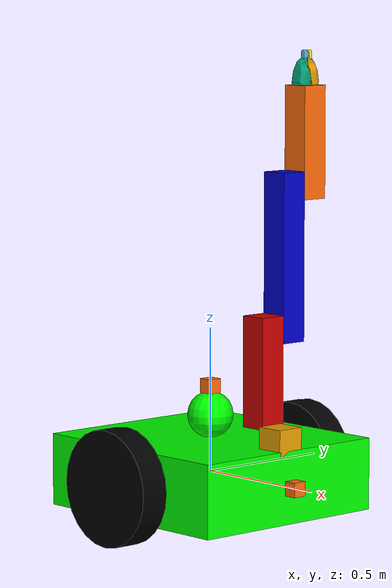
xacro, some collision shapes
<?xml version="1.0"?>
<robot name="mantzakidisbot" xmlns:xacro="http://www.ros.org/wiki/xacro">

 <!-- Σταθερές για τις διαστάσεις του ρομπότ -->
 <xacro:property name="height1" value="0.25" />        <!-- Ύψος ρομπότ-->
 <xacro:property name="length1" value="0.75" />        <!-- Μήκος ρομπότ-->
<xacro:property name="width1" value="0.8" />           <!--Πλάτος ρομπότ-->
<xacro:property name="mass1" value="10" />             <!--Μάζα ρομπότ-->
<xacro:property name="caster_radius" value="0.07" />   <!--Ακτίνα caster-->
<xacro:property name="caster_mass" value="0.5" />      <!-- Μάζα του caster -->
<xacro:property name="head_radius" value="0.08" />     <!-- Ακτίνα του κεφαλιού -->
<xacro:property name="head_mass" value="1" />          <!-- Μάζα του κεφαλιού -->
<xacro:property name="w_length" value="0.1"/>          <!-- Μήκος των τροχών -->
<xacro:property name="w_radius" value="0.2"/>          <!-- Ακτίνα των τροχών -->
<xacro:property name="w_mass" value="0.5" />           <!-- Μάζα των τροχών -->

 <!-- Εισαγωγή χρωμάτων Rviz -->
  <xacro:include filename="$(find robot_project)/urdf/materials.xacro" />

<!-- Default Inertial -->
  <xacro:macro name="default_inertial" params="z_value i_value mass">
    <inertial>
      <origin xyz="0 0 ${z_value}" rpy="0 0 0"/>
      <mass value="${mass}" />
      <inertia ixx="${i_value}" ixy="0.0" ixz="0.0"
               iyy="${i_value}" iyz="0.0"
               izz="${i_value}" />
      </inertial>
  </xacro:macro>

<!-- Εισαγωγή URDF του βραχίονα -->
  <xacro:include filename="$(find robot_project)/urdf/mantzakidisbot_arm.xacro" />

<!-- Εισαγωγή στοιχείων Gazebo, συμπεριλαμβανομένων των χρωμάτων του Gazebo -->
  <xacro:include filename="$(find robot_project)/urdf/mantzakidisbot.gazebo" />

<!-- Εισαγωγή laser & camera-->
  <xacro:include filename="$(find robot_project)/urdf/mantzakidisbot_laser_camera.xacro" />
<!-- Εισαγωγή κάμερας κεφαλιού-->
  <xacro:include filename="$(find robot_project)/urdf/head_camera.xacro" />

  <!-- Robot chassis -->
  <link name="chassis">
    <visual>
      <origin xyz="0 0 0" rpy="0 0 0" />
      <geometry>
          <box size="${width1} ${length1} ${height1}"/>
      </geometry>
      <material name="green">
      </material>
    </visual>
    <!-- Chassis collision, mass and inertia -->
    <collision>
      <origin xyz="0 0 0" rpy="0 0 0" />
      <geometry>
          <box size="${width1} ${length1} ${height1}"/>
      </geometry>
    </collision>
    <inertial>
      <mass value="${mass1}"/>
      <inertia ixx="0.52" ixy="0.0" ixz="0.0" iyy="0.58" iyz="0.0" izz="0.1"/>
    </inertial>
  </link>

<!-- Caster -->
  <link name="caster">
    <visual>
      <origin xyz="0 0 0" rpy="0 0 0" />
      <geometry>
        <sphere radius="${caster_radius}" />
      </geometry>
       <material name="green">
      </material>
    </visual>
     <!-- Caster collision, mass and inertia -->
    <collision>
      <origin xyz="0 0 0" rpy="0 0 0" />
      <geometry>
        <sphere radius="${caster_radius}" />
      </geometry>
      <surface>
        <friction>
          <ode>
            <mu>0</mu>
            <mu2>0</mu2>
            <slip1>1.0</slip1>
            <slip2>1.0</slip2>
          </ode>
        </friction>
      </surface>
    </collision>
    <inertial>
      <mass value="${caster_mass}"/>
      <inertia ixx="0.0001" ixy="0.0" ixz="0.0" iyy="0.0001" iyz="0.0" izz="0.0001"/>
    </inertial>
  </link>
  <!-- Caster joint -->
  <joint name="joint_caster" type="fixed">
    <parent link="chassis"/>
    <child link="caster"/>
     <origin xyz="-0.35 0 -0.125" rpy="0 0 0" />
  </joint>

<!--Head-->
    <link name="head">
      <visual>
        <origin xyz="0 0 0" rpy="0 0 0" />
        <geometry>
          <sphere radius="${head_radius}" />
        </geometry>
        <material name="green">
      </material>
      </visual>
      <!-- Head collision, mass and inertia -->
      <collision>
        <origin xyz="0 0 0" rpy="0 0 0" />
        <geometry>
          <sphere radius="${head_radius}" />
        </geometry>
      </collision>
      <inertial>
        <mass value="${head_mass}"/>
        <inertia ixx="0.004" ixy="0.0" ixz="0.0" iyy="0.004" iyz="0.0" izz="0.004"/>
      </inertial>
    </link>

  <!--Head joint-->
  <joint name="joint_head" type="fixed">
    <parent link="chassis"/>
    <child link="head"/>
    <origin xyz="0 0 0.2" rpy="0 0 0" />
  </joint>

<!-- Right Wheel -->
  <link name="right_wheel">
    <visual>
      <origin xyz="0 0 0" rpy="1.570795 0 0" />
      <geometry>
          <cylinder length="${w_length}" radius="${w_radius}" />
      </geometry>
     <material name="black">
      </material>
    </visual>
    <!-- Right Wheel collision, mass and inertia -->
    <collision>
      <origin xyz="0 0 0" rpy="1.570795 0 0" />
      <geometry>
          <cylinder length="${w_length}" radius="${w_radius}" />
      </geometry>
    </collision>
    <inertial>
      <mass value="${w_mass}"/>
      <inertia ixx="0.01" ixy="0.0" ixz="0.0" iyy="0.005" iyz="0.0" izz="0.005"/>
    </inertial>
  </link>
  <joint name="joint_right_wheel" type="continuous">
    <parent link="chassis"/>
    <child link="right_wheel"/>
    <origin xyz="0 -0.43 0" rpy="0 0 0" />
    <axis xyz="0 1 0" />
  </joint>

<!-- Left Wheel -->
  <link name="left_wheel">
    <visual>
      <origin xyz="0 0 0" rpy="1.570795 0 0" />
      <geometry>
          <cylinder length="${w_length}" radius="${w_radius}" />
      </geometry>
      <material name="black">
      </material>
    </visual>
    <!-- Left Wheel collision, mass and inertia -->
    <collision>
      <origin xyz="0 0 0" rpy="1.570795 0 0" />
      <geometry>
          <cylinder length="${w_length}" radius="${w_radius}" />
      </geometry>
    </collision>
    <inertial>
      <mass value="${w_mass}"/>
      <inertia ixx="0.01" ixy="0.0" ixz="0.0" iyy="0.005" iyz="0.0" izz="0.005"/>
    </inertial>
  </link>
  <joint name="joint_left_wheel" type="continuous">
    <parent link="chassis"/>
    <child link="left_wheel"/>
    <origin xyz="0 0.43 0" rpy="0 0 0" />
    <axis xyz="0 1 0" />
  </joint>
</robot>

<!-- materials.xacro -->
<robot>
  <material name="black">
    <color rgba="0 0 0 1"/>
  </material>

  <material name="green">
    <color rgba="0 1 0 1"/>
  </material>

  <material name="red">
    <color rgba="0.8 0.0 0.0 1.0"/>
  </material>

  <material name="blue">
    <color rgba="0.0 0.0 0.8 1.0"/>
  </material>

  <material name="orange">
    <color rgba="${255/255} ${108/255} ${10/255} 1.0"/>
  </material>

  <material name="yellow">
    <color rgba="1.0 1.0 0.0 1.0"/>
  </material>

  <material name="purple">
    <color rgba="0.5 0.0 0.5 1.0"/>
  </material>

  <material name="cyan">
    <color rgba="0.0 1.0 1.0 1.0"/>
  </material>

  <material name="magenta">
    <color rgba="1.0 0.0 1.0 1.0"/>
  </material>

  <material name="light_grey">
    <color rgba="0.8 0.8 0.8 1.0"/>
  </material>

  <material name="dark_grey">
    <color rgba="0.2 0.2 0.2 1.0"/>
  </material>

  <material name="gold">
    <color rgba="${255/255} ${215/255} ${0/255} 1.0"/>
  </material>
</robot>

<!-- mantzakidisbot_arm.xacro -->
<robot xmlns:xacro="http://www.ros.org/wiki/xacro">

<xacro:property name="h_arm1" value="0.4" />   <!-- Μήκος του πρώτου τμήματος του βραχίονα -->
<xacro:property name="h_arm2" value="0.6" />   <!-- Μήκος του δεύτερου τμήματος του βραχίονα -->
<xacro:property name="h_arm3" value="0.4" />   <!-- Μήκος του τρίτου τμήματος του βραχίονα -->
<xacro:property name="arm_width" value="0.1" />  <!-- Πλάτος των τμημάτων του βραχίονα -->
 <xacro:property name="axle_offset" value="0.05" /> <!-- Απόσταση μεταξύ της άρθρωσης και του άκρου του τμήματος του βραχίωνα -->
 <xacro:property name="damp" value="0.7" />  <!-- Aπόσβεση (damping) που εφαρμόζεται σε έναν αρθρωτό μηχανισμό για να μειωθούν οι δονήσεις-->

<!-- Εισαγωγή URDF της αρπάγης -->
  <xacro:include filename="$(find robot_project)/urdf/gripper.xacro" />

<!-- Μακρο εντολή για τον υπολογισμό της αδράνειας-->
  <xacro:macro name="default_inertial" params="z_value i_value mass">
    <inertial>
      <origin xyz="0 0 ${z_value}" rpy="0 0 0"/>
      <mass value="${mass}" />
      <inertia ixx="${i_value}" ixy="0.0" ixz="0.0"
               iyy="${i_value}" iyz="0.0"
               izz="${i_value}" />
      </inertial>
  </xacro:macro>

<!--Πρώτο τμήμα του βραχίονα-->
<joint name="arm_base" type="fixed">
    <parent link="chassis"/>
    <child link="arm1"/>
    <origin xyz="0 0.25 0.32" rpy="0 0 0" />
  </joint>

 <link name="arm1">
    <visual>
      <origin xyz="0 0 0" rpy="0 0 0"/>
      <geometry>
	<box size="${arm_width} ${arm_width} ${h_arm1}"/>
      </geometry>
      <material name="red"/>
    </visual>

    <collision>
      <origin xyz="0 0 ${h_arm1/2}" rpy="0 0 0"/>
      <geometry>
	<box size="${arm_width} ${arm_width} ${h_arm1}"/>
      </geometry>
    </collision>

    <xacro:default_inertial z_value="${h_arm1/2}" i_value="1.0" mass="0.5"/>
  </link>

<!-- Άρθρωση ανάμεσα στο πρώτο και το δεύτερο τμήμα του βραχίονα-->
  <joint name="arm1_arm2_joint" type="revolute">
    <parent link="arm1"/>
    <child link="arm2"/>
    <origin xyz="0 ${arm_width} 0.15" rpy="0 0 0"/>
    <axis xyz="0 1 0"/>
    <dynamics damping="${damp}"/>
    <limit effort="100.0" velocity="0.5" lower="-3.14" upper="3.14" />
  </joint>

  <!-- Δεύτερο τμήμα του βραχίονα -->
  <link name="arm2">
    <visual>
      <origin xyz="0 0 0.25" rpy="0 0 0"/>
      <geometry>
	<box size="${arm_width} ${arm_width} ${h_arm2}"/>
      </geometry>
      <material name="blue"/>
    </visual>

    <collision>
      <origin xyz="0 0 0.25" rpy="0 0 0"/>
      <geometry>
	<box size="${arm_width} ${arm_width} ${h_arm2}"/>
      </geometry>
    </collision>

    <xacro:default_inertial z_value="${h_arm2/3 - axle_offset}" i_value="1.0" mass="0.5"/>
  </link>

<!-- Άρθρωση ανάμεσα στο δεύτερο και το τρίτο  τμήμα του βραχίονα -->
  <joint name="arm2_arm3_joint" type="revolute">
    <parent link="arm2"/>
    <child link="arm3"/>
    <origin xyz="0 ${arm_width} 0.5" rpy="0 0 0"/>
    <axis xyz="0 1 0"/>
    <dynamics damping="${damp}"/>
    <limit effort="100.0" velocity="0.5" lower="-3.14" upper="3.14" />
  </joint>

  <!-- Τρίτο τμήμα του βραχίονα -->
  <link name="arm3">
    <visual>
      <origin xyz="0 0 0.15" rpy="0 0 0"/>
      <geometry>
	<box size="${arm_width} ${arm_width} ${h_arm3}"/>
      </geometry>
      <material name="orange"/>
    </visual>

    <collision>
      <origin xyz="0 0 0.25" rpy="0 0 0"/>
      <geometry>
	<box size="${arm_width} ${arm_width} ${h_arm3}"/>
      </geometry>
    </collision>

    <xacro:default_inertial z_value="${h_arm3/2 - axle_offset}" i_value="1.0" mass="0.5"/>
  </link>

<!-- Transmission1-Μετάδοση1 Αυτή η μετάδοση χρησιμοποιεί ένα απλό μοντέλο μετάδοσης (SimpleTransmission),
όπου μια ενέργεια εφαρμόζεται στην άρθρωση μεταξύ των τμημάτων "arm1" και "arm2" -->
  <transmission name="transmission1">
    <type>transmission_interface/SimpleTransmission</type>
    <joint name="arm1_arm2_joint">
      <hardwareInterface>EffortJointInterface</hardwareInterface>
    </joint>
    <actuator name="motor1">
      <hardwareInterface>EffortJointInterface</hardwareInterface>
      <mechanicalReduction>1</mechanicalReduction>
    </actuator>
  </transmission>

<!-- Transmission2-Μετάδοση2 Αυτή η μετάδοση χρησιμοποιεί ένα απλό μοντέλο μετάδοσης (SimpleTransmission),
όπου μια ενέργεια εφαρμόζεται στην άρθρωση μεταξύ των τμημάτων "arm2" και "arm3" -->
  <transmission name="transmission2">
    <type>transmission_interface/SimpleTransmission</type>
    <joint name="arm2_arm3_joint">
      <hardwareInterface>EffortJointInterface</hardwareInterface>
    </joint>
    <actuator name="motor2">
      <hardwareInterface>EffortJointInterface</hardwareInterface>
      <mechanicalReduction>1</mechanicalReduction>
    </actuator>
  </transmission>
  </robot>

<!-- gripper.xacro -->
<robot xmlns:xacro="http://www.ros.org/wiki/xacro">

  <!-- Άρθρωση revolute για το αριστερό κομμάτι της αρπάγης και το τρίτο άκρο του βραχίονα -->
  <joint name="left_gripper_joint" type="revolute">
    <parent link="arm3"/>
    <child link="left_gripper"/>
    <origin xyz="0 0 ${h_arm3 - axle_offset}" rpy="0 -1.57 0"/>
    <axis xyz="0 0 -1"/>
    <limit effort="30.0" lower="-0.548" upper="0.0" velocity="0.1"/>
  </joint>
<!--Αριστερό κομμάτι αρπάγης-->
  <link name="left_gripper">
    <visual>
      <origin rpy="0 0 0" xyz="0 0 0"/>
      <geometry>
        <mesh filename="package://robot_project/meshes/l_finger.dae"/>
      </geometry>
    </visual>

    <collision>
      <geometry>
        <box size="0.1 0.1 0.1"/>
      </geometry>
    </collision>
    <xacro:default_inertial z_value="0" i_value="0.000001" mass="1"/>
  </link>
<!--Fixed άρθρωση του αριστερού κομματιού της αρπάγης και της άκρης του-->
  <joint name="left_tip_joint" type="fixed">
    <parent link="left_gripper"/>
    <child link="left_tip"/>
  </joint>
<!--Άκρη του αριστερού κομματιού της αρπάγης-->
  <link name="left_tip">
    <visual>
      <origin rpy="0 0 0" xyz="0.09137 0.00495 0"/>
      <geometry>
        <mesh filename="package://robot_project/meshes/l_finger_tip.dae"/>
      </geometry>
    </visual>

    <collision>
      <geometry>
        <box size="0.1 0.1 0.1"/>
      </geometry>
    </collision>
    <xacro:default_inertial z_value="0" i_value="1e-6" mass="1e-5"/>
  </link>
  <!-- Άρθρωση revolute για το δεξιό κομμάτι της αρπάγης και το τρίτο άκρο του βραχίονα -->
  <joint name="right_gripper_joint" type="revolute">
    <parent link="arm3"/>
    <child link="right_gripper"/>
    <origin xyz="0 0 ${h_arm3 - axle_offset}" rpy="0 -1.57 0"/>
    <axis xyz="0 0 1"/>
    <limit effort="30.0" lower="-0.548" upper="0.0" velocity="0.1"/>
  </joint>
<!--Δεξιό κομμάτι αρπάγης-->
  <link name="right_gripper">
    <visual>
      <origin rpy="3.1415 0 0" xyz="0 0 0"/>
      <geometry>
        <mesh filename="package://robot_project/meshes/l_finger.dae"/>
      </geometry>
    </visual>

    <collision>
      <geometry>
        <box size="0.1 0.1 0.1"/>
      </geometry>
    </collision>
    <xacro:default_inertial z_value="0" i_value="1e-6" mass="1"/>
  </link>
<!--Fixed άρθρωση του δεξιού κομματιού της αρπάγης και της άκρης του-->
  <joint name="right_tip_joint" type="fixed">
    <parent link="right_gripper"/>
    <child link="right_tip"/>
  </joint>
<!--Άκρη του δεξιού κομματιού της αρπάγης-->
  <link name="right_tip">
    <visual>
      <origin rpy="-3.1415 0 0" xyz="0.09137 0.00495 0"/>
      <geometry>
        <mesh filename="package://robot_project/meshes/l_finger_tip.dae"/>
      </geometry>
    </visual>

    <collision>
      <geometry>
        <box size="0.1 0.1 0.1"/>
      </geometry>
    </collision>
    <xacro:default_inertial z_value="0" i_value="1e-6" mass="1e-5"/>
  </link>
  <transmission name="gripper_transmission1">
    <type>transmission_interface/SimpleTransmission</type>
    <joint name="left_gripper_joint">
      <hardwareInterface>EffortJointInterface</hardwareInterface>
    </joint>
    <actuator name="gripper_motor1">
      <hardwareInterface>EffortJointInterface</hardwareInterface>
      <mechanicalReduction>1</mechanicalReduction>
    </actuator>
  </transmission>
  <transmission name="gripper_transmission2">
    <type>transmission_interface/SimpleTransmission</type>
    <joint name="right_gripper_joint">
      <hardwareInterface>EffortJointInterface</hardwareInterface>
    </joint>
    <actuator name="gripper_motor2">
      <hardwareInterface>EffortJointInterface</hardwareInterface>
      <mechanicalReduction>1</mechanicalReduction>
    </actuator>
  </transmission>

</robot>

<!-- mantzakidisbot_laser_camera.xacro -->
<robot xmlns:xacro="http://www.ros.org/wiki/xacro">

<!-- Ορισμός μεγέθους και μάζας της κάμερας -->
<xacro:property name="cameraSize" value="0.05"/>
<xacro:property name="cameraMass" value="0.1"/>

<!-- Κάμερα -->
<link name="camera">
    <collision>
      <origin xyz="0 0 0" rpy="0 0 0"/>
      <geometry>
        <box size="${cameraSize} ${cameraSize} ${cameraSize}"/>
      </geometry>
    </collision>

    <visual>
      <origin xyz="0 0 0" rpy="0 0 0"/>
      <geometry>
        <box size="${cameraSize} ${cameraSize} ${cameraSize}"/>
      </geometry>
      <material name="orange"/>
    </visual>

    <inertial>
      <mass value="${cameraMass}" />
      <origin xyz="0 0 0" rpy="0 0 0"/>
      <box_inertia m="${cameraMass}" x="${cameraSize}" y="${cameraSize}" z="${cameraSize}" />
      <inertia ixx="1e-6" ixy="0" ixz="0" iyy="1e-6" iyz="0" izz="1e-6" />
    </inertial>
  </link>
<!--Σύνδεση κάμερας με το σασί του ρομπότ με μία fixed άρθρωση-->
  <joint name="camera_joint" type="fixed">
    <axis xyz="0 0 0" />
    <origin xyz="0.42 0 0" rpy="0 0 0"/>
    <parent link="chassis"/>
    <child link="camera"/>
  </joint>

<!--Σύνδεση hokuyo laser scanner με το σασί του ρομπότ με μία fixed άρθρωση-->
  <joint name="hokuyo_joint" type="fixed">
    <axis xyz="0 1 0" />
    <origin xyz="0.35 0 0.15" rpy="0 0 0"/>
    <parent link="chassis"/>
    <child link="hokuyo"/>
  </joint>

  <!-- Hokuyo Laser -->
  <link name="hokuyo">
    <collision>
      <origin xyz="0 0 0" rpy="0 0 0"/>
      <geometry>
    <box size="0.1 0.1 0.1"/>
      </geometry>
    </collision>

    <visual>
      <origin xyz="0 0 0" rpy="0 0 0"/>
      <geometry>
        <mesh filename="package://project_final_mantzakidis_131/meshes/hokuyo.dae"/>
      </geometry>
    </visual>

    <inertial>
      <mass value="1e-5" />
      <origin xyz="0 0 0" rpy="0 0 0"/>
      <inertia ixx="1e-6" ixy="0" ixz="0" iyy="1e-6" iyz="0" izz="1e-6" />
    </inertial>
  </link>

</robot>

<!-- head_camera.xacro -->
<robot xmlns:xacro="http://www.ros.org/wiki/xacro">

<!-- Ορισμός μεγέθους και μάζας της κάμερας -->
<xacro:property name="cameraSize" value="0.05"/>
<xacro:property name="cameraMass" value="0.1"/>

<!-- Δεύτερη κάμερα στο κεφάλι-->
<link name="camera2">
    <collision>
      <origin xyz="0 0 0" rpy="0 0 0"/>
      <geometry>
        <box size="${cameraSize} ${cameraSize} ${cameraSize}"/>
      </geometry>
    </collision>

    <visual>
      <origin xyz="0 0 0" rpy="0 0 0"/>
      <geometry>
        <box size="${cameraSize} ${cameraSize} ${cameraSize}"/>
      </geometry>
      <material name="orange"/>
    </visual>

    <inertial>
      <mass value="${cameraMass}" />
      <origin xyz="0 0 0" rpy="0 0 0"/>
      <box_inertia m="${cameraMass}" x="${cameraSize}" y="${cameraSize}" z="${cameraSize}" />
      <inertia ixx="1e-6" ixy="0" ixz="0" iyy="1e-6" iyz="0" izz="1e-6" />
    </inertial>
</link>

<!--Σύνδεση κάμερας με το κεφάλι του ρομπότ με μία fixed άρθρωση-->
  <joint name="camera2_joint" type="fixed">
    <axis xyz="0 0 0" />
    <origin xyz="0 0 0.1" rpy="0 0 0"/>
    <parent link="head"/>
    <child link="camera2"/>
  </joint>

</robot>
